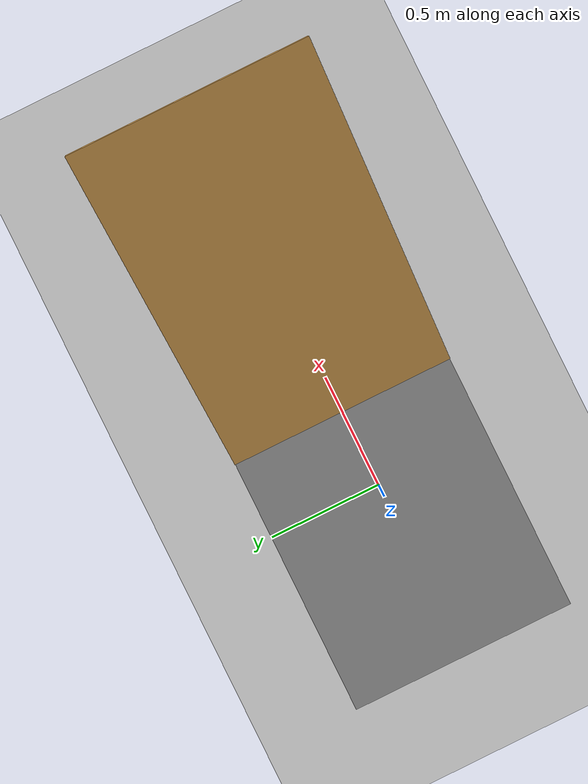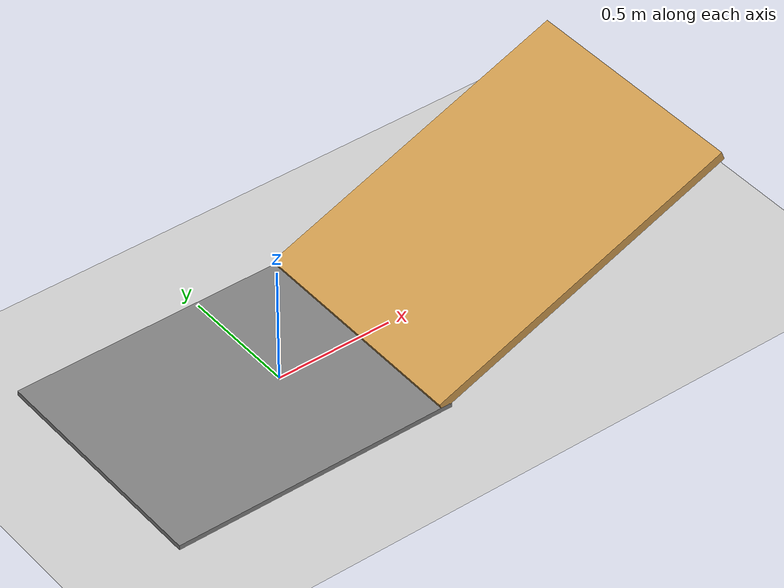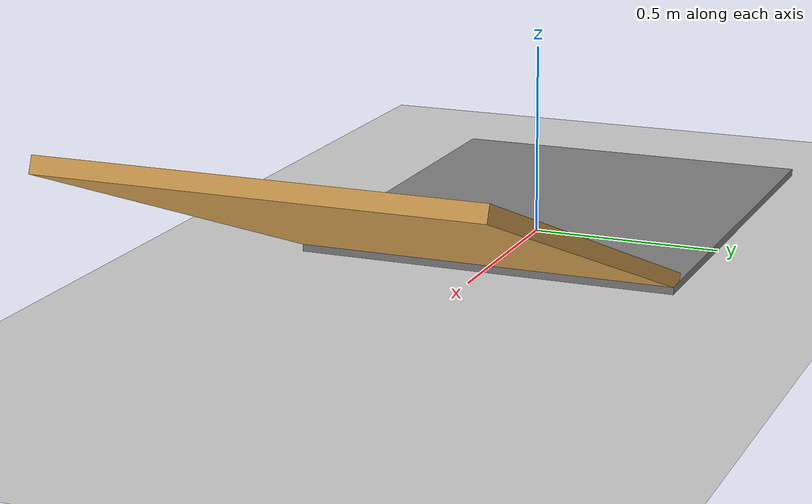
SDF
<?xml version="1.0" ?>
<sdf version="1.6">
  <world name="ramp_world">

    <include>
      <uri>model://ground_plane</uri>
    </include>

    <include>
      <uri>model://sun</uri>
    </include>

    <!-- Flat approach surface so robot starts on solid ground -->
    <model name="approach_pad">
      <static>true</static>
      <link name="link">
        <collision name="col">
          <geometry><box><size>1.2 1.0 0.02</size></box></geometry>
        </collision>
        <visual name="vis">
          <geometry><box><size>1.2 1.0 0.02</size></box></geometry>
          <material>
            <ambient>0.5 0.5 0.5 1</ambient>
            <diffuse>0.5 0.5 0.5 1</diffuse>
          </material>
        </visual>
      </link>
      <!-- Sits right in front of spawn point (x=-1.0) -->
      <pose>-0.2 0 0.01 0 0 0</pose>
    </model>

    <!-- Ramp: tilted ~22 deg (above 15 deg threshold) -->
    <model name="ramp">
      <static>true</static>
      <link name="link">
        <collision name="col">
          <geometry><box><size>1.4 1.0 0.04</size></box></geometry>
        </collision>
        <visual name="vis">
          <geometry><box><size>1.4 1.0 0.04</size></box></geometry>
          <material>
            <ambient>0.8 0.6 0.3 1</ambient>
            <diffuse>0.8 0.6 0.3 1</diffuse>
          </material>
        </visual>
      </link>
      <!-- x=1.0 puts it ahead of the spawn point; pitch 0.38 rad ≈ 22 deg -->
      <pose>1.0 0 0.28 0 -0.38 0</pose>
    </model>

  </world>
</sdf>
